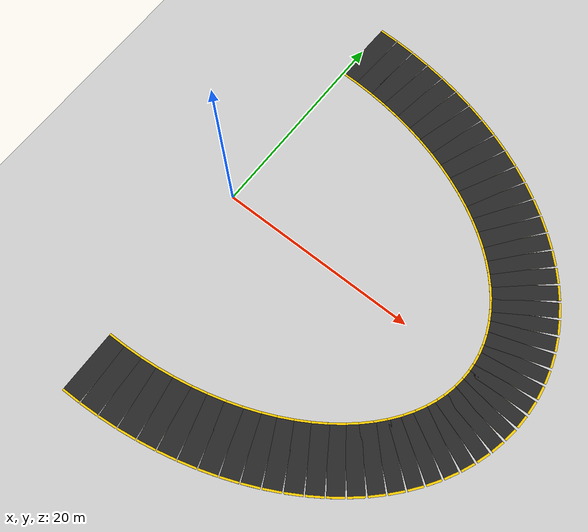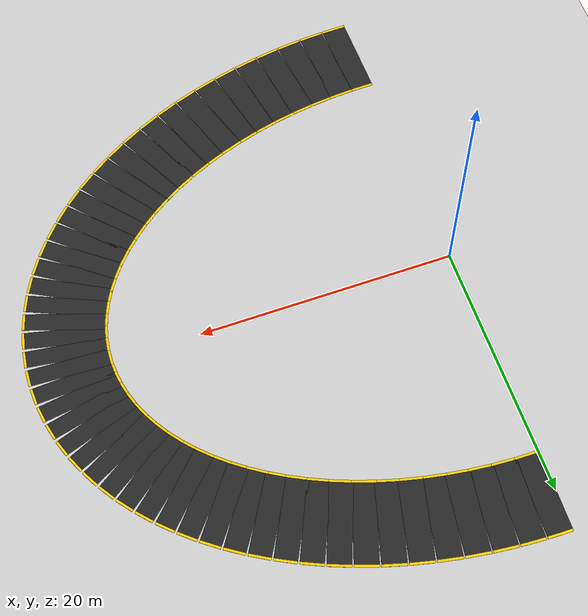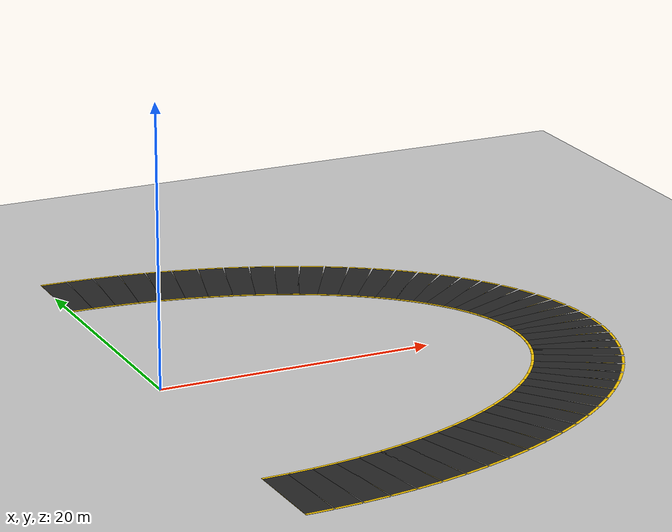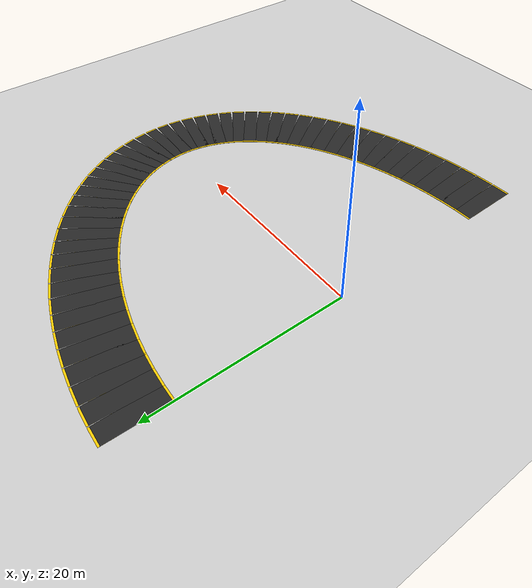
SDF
<sdf version="1.7">
 <world name="custom_road_world">
  <include><uri>https://fuel.ignitionrobotics.org/1.0/openrobotics/models/Ground Plane</uri></include>
  <include><uri>https://fuel.ignitionrobotics.org/1.0/openrobotics/models/Sun</uri></include>
  <model name="elliptical_road">
   <static>true</static>
   <link name="seg_0">
    <pose>29.970 0.628 0.01 0 0 1.618</pose>
    <visual name="yellow_base_0">
     <pose>0 0 0.001 0 0 0</pose>
     <geometry><box><size>1.287 6.4 0.02</size></box></geometry>
     <material>
      <ambient>1.0 0.8 0.0 1.0</ambient>
      <diffuse>1.0 0.8 0.0 1.0</diffuse>
      <specular>0.1 0.1 0.1 1.0</specular>
     </material>
    </visual>
    <visual name="asphalt_top_0">
     <pose>0 0 0.002 0 0 0</pose>
     <geometry><box><size>1.287 6.0 0.02</size></box></geometry>
     <material>
      <ambient>0.15 0.15 0.15 1.0</ambient>
      <diffuse>0.15 0.15 0.15 1.0</diffuse>
      <specular>0.05 0.05 0.05 1.0</specular>
     </material>
    </visual>
    <collision name="collision_0">
     <pose>0 0 0.002 0 0 0</pose>
     <geometry><box><size>1.287 6.0 0.02</size></box></geometry>
    </collision>
   </link>
   <link name="seg_1">
    <pose>29.852 1.881 0.01 0 0 1.712</pose>
    <visual name="yellow_base_1">
     <pose>0 0 0.001 0 0 0</pose>
     <geometry><box><size>1.293 6.4 0.02</size></box></geometry>
     <material>
      <ambient>1.0 0.8 0.0 1.0</ambient>
      <diffuse>1.0 0.8 0.0 1.0</diffuse>
      <specular>0.1 0.1 0.1 1.0</specular>
     </material>
    </visual>
    <visual name="asphalt_top_1">
     <pose>0 0 0.002 0 0 0</pose>
     <geometry><box><size>1.293 6.0 0.02</size></box></geometry>
     <material>
      <ambient>0.15 0.15 0.15 1.0</ambient>
      <diffuse>0.15 0.15 0.15 1.0</diffuse>
      <specular>0.05 0.05 0.05 1.0</specular>
     </material>
    </visual>
    <collision name="collision_1">
     <pose>0 0 0.002 0 0 0</pose>
     <geometry><box><size>1.293 6.0 0.02</size></box></geometry>
    </collision>
   </link>
   <link name="seg_2">
    <pose>29.616 3.127 0.01 0 0 1.804</pose>
    <visual name="yellow_base_2">
     <pose>0 0 0.001 0 0 0</pose>
     <geometry><box><size>1.306 6.4 0.02</size></box></geometry>
     <material>
      <ambient>1.0 0.8 0.0 1.0</ambient>
      <diffuse>1.0 0.8 0.0 1.0</diffuse>
      <specular>0.1 0.1 0.1 1.0</specular>
     </material>
    </visual>
    <visual name="asphalt_top_2">
     <pose>0 0 0.002 0 0 0</pose>
     <geometry><box><size>1.306 6.0 0.02</size></box></geometry>
     <material>
      <ambient>0.15 0.15 0.15 1.0</ambient>
      <diffuse>0.15 0.15 0.15 1.0</diffuse>
      <specular>0.05 0.05 0.05 1.0</specular>
     </material>
    </visual>
    <collision name="collision_2">
     <pose>0 0 0.002 0 0 0</pose>
     <geometry><box><size>1.306 6.0 0.02</size></box></geometry>
    </collision>
   </link>
   <link name="seg_3">
    <pose>29.263 4.361 0.01 0 0 1.894</pose>
    <visual name="yellow_base_3">
     <pose>0 0 0.001 0 0 0</pose>
     <geometry><box><size>1.323 6.4 0.02</size></box></geometry>
     <material>
      <ambient>1.0 0.8 0.0 1.0</ambient>
      <diffuse>1.0 0.8 0.0 1.0</diffuse>
      <specular>0.1 0.1 0.1 1.0</specular>
     </material>
    </visual>
    <visual name="asphalt_top_3">
     <pose>0 0 0.002 0 0 0</pose>
     <geometry><box><size>1.323 6.0 0.02</size></box></geometry>
     <material>
      <ambient>0.15 0.15 0.15 1.0</ambient>
      <diffuse>0.15 0.15 0.15 1.0</diffuse>
      <specular>0.05 0.05 0.05 1.0</specular>
     </material>
    </visual>
    <collision name="collision_3">
     <pose>0 0 0.002 0 0 0</pose>
     <geometry><box><size>1.323 6.0 0.02</size></box></geometry>
    </collision>
   </link>
   <link name="seg_4">
    <pose>28.795 5.577 0.01 0 0 1.982</pose>
    <visual name="yellow_base_4">
     <pose>0 0 0.001 0 0 0</pose>
     <geometry><box><size>1.346 6.4 0.02</size></box></geometry>
     <material>
      <ambient>1.0 0.8 0.0 1.0</ambient>
      <diffuse>1.0 0.8 0.0 1.0</diffuse>
      <specular>0.1 0.1 0.1 1.0</specular>
     </material>
    </visual>
    <visual name="asphalt_top_4">
     <pose>0 0 0.002 0 0 0</pose>
     <geometry><box><size>1.346 6.0 0.02</size></box></geometry>
     <material>
      <ambient>0.15 0.15 0.15 1.0</ambient>
      <diffuse>0.15 0.15 0.15 1.0</diffuse>
      <specular>0.05 0.05 0.05 1.0</specular>
     </material>
    </visual>
    <collision name="collision_4">
     <pose>0 0 0.002 0 0 0</pose>
     <geometry><box><size>1.346 6.0 0.02</size></box></geometry>
    </collision>
   </link>
   <link name="seg_5">
    <pose>28.212 6.771 0.01 0 0 2.066</pose>
    <visual name="yellow_base_5">
     <pose>0 0 0.001 0 0 0</pose>
     <geometry><box><size>1.374 6.4 0.02</size></box></geometry>
     <material>
      <ambient>1.0 0.8 0.0 1.0</ambient>
      <diffuse>1.0 0.8 0.0 1.0</diffuse>
      <specular>0.1 0.1 0.1 1.0</specular>
     </material>
    </visual>
    <visual name="asphalt_top_5">
     <pose>0 0 0.002 0 0 0</pose>
     <geometry><box><size>1.374 6.0 0.02</size></box></geometry>
     <material>
      <ambient>0.15 0.15 0.15 1.0</ambient>
      <diffuse>0.15 0.15 0.15 1.0</diffuse>
      <specular>0.05 0.05 0.05 1.0</specular>
     </material>
    </visual>
    <collision name="collision_5">
     <pose>0 0 0.002 0 0 0</pose>
     <geometry><box><size>1.374 6.0 0.02</size></box></geometry>
    </collision>
   </link>
   <link name="seg_6">
    <pose>27.519 7.939 0.01 0 0 2.147</pose>
    <visual name="yellow_base_6">
     <pose>0 0 0.001 0 0 0</pose>
     <geometry><box><size>1.405 6.4 0.02</size></box></geometry>
     <material>
      <ambient>1.0 0.8 0.0 1.0</ambient>
      <diffuse>1.0 0.8 0.0 1.0</diffuse>
      <specular>0.1 0.1 0.1 1.0</specular>
     </material>
    </visual>
    <visual name="asphalt_top_6">
     <pose>0 0 0.002 0 0 0</pose>
     <geometry><box><size>1.405 6.0 0.02</size></box></geometry>
     <material>
      <ambient>0.15 0.15 0.15 1.0</ambient>
      <diffuse>0.15 0.15 0.15 1.0</diffuse>
      <specular>0.05 0.05 0.05 1.0</specular>
     </material>
    </visual>
    <collision name="collision_6">
     <pose>0 0 0.002 0 0 0</pose>
     <geometry><box><size>1.405 6.0 0.02</size></box></geometry>
    </collision>
   </link>
   <link name="seg_7">
    <pose>26.717 9.075 0.01 0 0 2.223</pose>
    <visual name="yellow_base_7">
     <pose>0 0 0.001 0 0 0</pose>
     <geometry><box><size>1.439 6.4 0.02</size></box></geometry>
     <material>
      <ambient>1.0 0.8 0.0 1.0</ambient>
      <diffuse>1.0 0.8 0.0 1.0</diffuse>
      <specular>0.1 0.1 0.1 1.0</specular>
     </material>
    </visual>
    <visual name="asphalt_top_7">
     <pose>0 0 0.002 0 0 0</pose>
     <geometry><box><size>1.439 6.0 0.02</size></box></geometry>
     <material>
      <ambient>0.15 0.15 0.15 1.0</ambient>
      <diffuse>0.15 0.15 0.15 1.0</diffuse>
      <specular>0.05 0.05 0.05 1.0</specular>
     </material>
    </visual>
    <collision name="collision_7">
     <pose>0 0 0.002 0 0 0</pose>
     <geometry><box><size>1.439 6.0 0.02</size></box></geometry>
    </collision>
   </link>
   <link name="seg_8">
    <pose>25.810 10.176 0.01 0 0 2.296</pose>
    <visual name="yellow_base_8">
     <pose>0 0 0.001 0 0 0</pose>
     <geometry><box><size>1.476 6.4 0.02</size></box></geometry>
     <material>
      <ambient>1.0 0.8 0.0 1.0</ambient>
      <diffuse>1.0 0.8 0.0 1.0</diffuse>
      <specular>0.1 0.1 0.1 1.0</specular>
     </material>
    </visual>
    <visual name="asphalt_top_8">
     <pose>0 0 0.002 0 0 0</pose>
     <geometry><box><size>1.476 6.0 0.02</size></box></geometry>
     <material>
      <ambient>0.15 0.15 0.15 1.0</ambient>
      <diffuse>0.15 0.15 0.15 1.0</diffuse>
      <specular>0.05 0.05 0.05 1.0</specular>
     </material>
    </visual>
    <collision name="collision_8">
     <pose>0 0 0.002 0 0 0</pose>
     <geometry><box><size>1.476 6.0 0.02</size></box></geometry>
    </collision>
   </link>
   <link name="seg_9">
    <pose>24.800 11.236 0.01 0 0 2.366</pose>
    <visual name="yellow_base_9">
     <pose>0 0 0.001 0 0 0</pose>
     <geometry><box><size>1.514 6.4 0.02</size></box></geometry>
     <material>
      <ambient>1.0 0.8 0.0 1.0</ambient>
      <diffuse>1.0 0.8 0.0 1.0</diffuse>
      <specular>0.1 0.1 0.1 1.0</specular>
     </material>
    </visual>
    <visual name="asphalt_top_9">
     <pose>0 0 0.002 0 0 0</pose>
     <geometry><box><size>1.514 6.0 0.02</size></box></geometry>
     <material>
      <ambient>0.15 0.15 0.15 1.0</ambient>
      <diffuse>0.15 0.15 0.15 1.0</diffuse>
      <specular>0.05 0.05 0.05 1.0</specular>
     </material>
    </visual>
    <collision name="collision_9">
     <pose>0 0 0.002 0 0 0</pose>
     <geometry><box><size>1.514 6.0 0.02</size></box></geometry>
    </collision>
   </link>
   <link name="seg_10">
    <pose>23.693 12.252 0.01 0 0 2.432</pose>
    <visual name="yellow_base_10">
     <pose>0 0 0.001 0 0 0</pose>
     <geometry><box><size>1.553 6.4 0.02</size></box></geometry>
     <material>
      <ambient>1.0 0.8 0.0 1.0</ambient>
      <diffuse>1.0 0.8 0.0 1.0</diffuse>
      <specular>0.1 0.1 0.1 1.0</specular>
     </material>
    </visual>
    <visual name="asphalt_top_10">
     <pose>0 0 0.002 0 0 0</pose>
     <geometry><box><size>1.553 6.0 0.02</size></box></geometry>
     <material>
      <ambient>0.15 0.15 0.15 1.0</ambient>
      <diffuse>0.15 0.15 0.15 1.0</diffuse>
      <specular>0.05 0.05 0.05 1.0</specular>
     </material>
    </visual>
    <collision name="collision_10">
     <pose>0 0 0.002 0 0 0</pose>
     <geometry><box><size>1.553 6.0 0.02</size></box></geometry>
    </collision>
   </link>
   <link name="seg_11">
    <pose>22.492 13.220 0.01 0 0 2.494</pose>
    <visual name="yellow_base_11">
     <pose>0 0 0.001 0 0 0</pose>
     <geometry><box><size>1.593 6.4 0.02</size></box></geometry>
     <material>
      <ambient>1.0 0.8 0.0 1.0</ambient>
      <diffuse>1.0 0.8 0.0 1.0</diffuse>
      <specular>0.1 0.1 0.1 1.0</specular>
     </material>
    </visual>
    <visual name="asphalt_top_11">
     <pose>0 0 0.002 0 0 0</pose>
     <geometry><box><size>1.593 6.0 0.02</size></box></geometry>
     <material>
      <ambient>0.15 0.15 0.15 1.0</ambient>
      <diffuse>0.15 0.15 0.15 1.0</diffuse>
      <specular>0.05 0.05 0.05 1.0</specular>
     </material>
    </visual>
    <collision name="collision_11">
     <pose>0 0 0.002 0 0 0</pose>
     <geometry><box><size>1.593 6.0 0.02</size></box></geometry>
    </collision>
   </link>
   <link name="seg_12">
    <pose>21.203 14.135 0.01 0 0 2.554</pose>
    <visual name="yellow_base_12">
     <pose>0 0 0.001 0 0 0</pose>
     <geometry><box><size>1.632 6.4 0.02</size></box></geometry>
     <material>
      <ambient>1.0 0.8 0.0 1.0</ambient>
      <diffuse>1.0 0.8 0.0 1.0</diffuse>
      <specular>0.1 0.1 0.1 1.0</specular>
     </material>
    </visual>
    <visual name="asphalt_top_12">
     <pose>0 0 0.002 0 0 0</pose>
     <geometry><box><size>1.632 6.0 0.02</size></box></geometry>
     <material>
      <ambient>0.15 0.15 0.15 1.0</ambient>
      <diffuse>0.15 0.15 0.15 1.0</diffuse>
      <specular>0.05 0.05 0.05 1.0</specular>
     </material>
    </visual>
    <collision name="collision_12">
     <pose>0 0 0.002 0 0 0</pose>
     <geometry><box><size>1.632 6.0 0.02</size></box></geometry>
    </collision>
   </link>
   <link name="seg_13">
    <pose>19.830 14.995 0.01 0 0 2.610</pose>
    <visual name="yellow_base_13">
     <pose>0 0 0.001 0 0 0</pose>
     <geometry><box><size>1.670 6.4 0.02</size></box></geometry>
     <material>
      <ambient>1.0 0.8 0.0 1.0</ambient>
      <diffuse>1.0 0.8 0.0 1.0</diffuse>
      <specular>0.1 0.1 0.1 1.0</specular>
     </material>
    </visual>
    <visual name="asphalt_top_13">
     <pose>0 0 0.002 0 0 0</pose>
     <geometry><box><size>1.670 6.0 0.02</size></box></geometry>
     <material>
      <ambient>0.15 0.15 0.15 1.0</ambient>
      <diffuse>0.15 0.15 0.15 1.0</diffuse>
      <specular>0.05 0.05 0.05 1.0</specular>
     </material>
    </visual>
    <collision name="collision_13">
     <pose>0 0 0.002 0 0 0</pose>
     <geometry><box><size>1.670 6.0 0.02</size></box></geometry>
    </collision>
   </link>
   <link name="seg_14">
    <pose>18.378 15.795 0.01 0 0 2.664</pose>
    <visual name="yellow_base_14">
     <pose>0 0 0.001 0 0 0</pose>
     <geometry><box><size>1.706 6.4 0.02</size></box></geometry>
     <material>
      <ambient>1.0 0.8 0.0 1.0</ambient>
      <diffuse>1.0 0.8 0.0 1.0</diffuse>
      <specular>0.1 0.1 0.1 1.0</specular>
     </material>
    </visual>
    <visual name="asphalt_top_14">
     <pose>0 0 0.002 0 0 0</pose>
     <geometry><box><size>1.706 6.0 0.02</size></box></geometry>
     <material>
      <ambient>0.15 0.15 0.15 1.0</ambient>
      <diffuse>0.15 0.15 0.15 1.0</diffuse>
      <specular>0.05 0.05 0.05 1.0</specular>
     </material>
    </visual>
    <collision name="collision_14">
     <pose>0 0 0.002 0 0 0</pose>
     <geometry><box><size>1.706 6.0 0.02</size></box></geometry>
    </collision>
   </link>
   <link name="seg_15">
    <pose>16.854 16.533 0.01 0 0 2.716</pose>
    <visual name="yellow_base_15">
     <pose>0 0 0.001 0 0 0</pose>
     <geometry><box><size>1.741 6.4 0.02</size></box></geometry>
     <material>
      <ambient>1.0 0.8 0.0 1.0</ambient>
      <diffuse>1.0 0.8 0.0 1.0</diffuse>
      <specular>0.1 0.1 0.1 1.0</specular>
     </material>
    </visual>
    <visual name="asphalt_top_15">
     <pose>0 0 0.002 0 0 0</pose>
     <geometry><box><size>1.741 6.0 0.02</size></box></geometry>
     <material>
      <ambient>0.15 0.15 0.15 1.0</ambient>
      <diffuse>0.15 0.15 0.15 1.0</diffuse>
      <specular>0.05 0.05 0.05 1.0</specular>
     </material>
    </visual>
    <collision name="collision_15">
     <pose>0 0 0.002 0 0 0</pose>
     <geometry><box><size>1.741 6.0 0.02</size></box></geometry>
    </collision>
   </link>
   <link name="seg_16">
    <pose>15.264 17.206 0.01 0 0 2.766</pose>
    <visual name="yellow_base_16">
     <pose>0 0 0.001 0 0 0</pose>
     <geometry><box><size>1.774 6.4 0.02</size></box></geometry>
     <material>
      <ambient>1.0 0.8 0.0 1.0</ambient>
      <diffuse>1.0 0.8 0.0 1.0</diffuse>
      <specular>0.1 0.1 0.1 1.0</specular>
     </material>
    </visual>
    <visual name="asphalt_top_16">
     <pose>0 0 0.002 0 0 0</pose>
     <geometry><box><size>1.774 6.0 0.02</size></box></geometry>
     <material>
      <ambient>0.15 0.15 0.15 1.0</ambient>
      <diffuse>0.15 0.15 0.15 1.0</diffuse>
      <specular>0.05 0.05 0.05 1.0</specular>
     </material>
    </visual>
    <collision name="collision_16">
     <pose>0 0 0.002 0 0 0</pose>
     <geometry><box><size>1.774 6.0 0.02</size></box></geometry>
    </collision>
   </link>
   <link name="seg_17">
    <pose>13.613 17.811 0.01 0 0 2.814</pose>
    <visual name="yellow_base_17">
     <pose>0 0 0.001 0 0 0</pose>
     <geometry><box><size>1.803 6.4 0.02</size></box></geometry>
     <material>
      <ambient>1.0 0.8 0.0 1.0</ambient>
      <diffuse>1.0 0.8 0.0 1.0</diffuse>
      <specular>0.1 0.1 0.1 1.0</specular>
     </material>
    </visual>
    <visual name="asphalt_top_17">
     <pose>0 0 0.002 0 0 0</pose>
     <geometry><box><size>1.803 6.0 0.02</size></box></geometry>
     <material>
      <ambient>0.15 0.15 0.15 1.0</ambient>
      <diffuse>0.15 0.15 0.15 1.0</diffuse>
      <specular>0.05 0.05 0.05 1.0</specular>
     </material>
    </visual>
    <collision name="collision_17">
     <pose>0 0 0.002 0 0 0</pose>
     <geometry><box><size>1.803 6.0 0.02</size></box></geometry>
    </collision>
   </link>
   <link name="seg_18">
    <pose>11.909 18.346 0.01 0 0 2.861</pose>
    <visual name="yellow_base_18">
     <pose>0 0 0.001 0 0 0</pose>
     <geometry><box><size>1.830 6.4 0.02</size></box></geometry>
     <material>
      <ambient>1.0 0.8 0.0 1.0</ambient>
      <diffuse>1.0 0.8 0.0 1.0</diffuse>
      <specular>0.1 0.1 0.1 1.0</specular>
     </material>
    </visual>
    <visual name="asphalt_top_18">
     <pose>0 0 0.002 0 0 0</pose>
     <geometry><box><size>1.830 6.0 0.02</size></box></geometry>
     <material>
      <ambient>0.15 0.15 0.15 1.0</ambient>
      <diffuse>0.15 0.15 0.15 1.0</diffuse>
      <specular>0.05 0.05 0.05 1.0</specular>
     </material>
    </visual>
    <collision name="collision_18">
     <pose>0 0 0.002 0 0 0</pose>
     <geometry><box><size>1.830 6.0 0.02</size></box></geometry>
    </collision>
   </link>
   <link name="seg_19">
    <pose>10.157 18.808 0.01 0 0 2.906</pose>
    <visual name="yellow_base_19">
     <pose>0 0 0.001 0 0 0</pose>
     <geometry><box><size>1.854 6.4 0.02</size></box></geometry>
     <material>
      <ambient>1.0 0.8 0.0 1.0</ambient>
      <diffuse>1.0 0.8 0.0 1.0</diffuse>
      <specular>0.1 0.1 0.1 1.0</specular>
     </material>
    </visual>
    <visual name="asphalt_top_19">
     <pose>0 0 0.002 0 0 0</pose>
     <geometry><box><size>1.854 6.0 0.02</size></box></geometry>
     <material>
      <ambient>0.15 0.15 0.15 1.0</ambient>
      <diffuse>0.15 0.15 0.15 1.0</diffuse>
      <specular>0.05 0.05 0.05 1.0</specular>
     </material>
    </visual>
    <collision name="collision_19">
     <pose>0 0 0.002 0 0 0</pose>
     <geometry><box><size>1.854 6.0 0.02</size></box></geometry>
    </collision>
   </link>
   <link name="seg_20">
    <pose>8.366 19.196 0.01 0 0 2.950</pose>
    <visual name="yellow_base_20">
     <pose>0 0 0.001 0 0 0</pose>
     <geometry><box><size>1.873 6.4 0.02</size></box></geometry>
     <material>
      <ambient>1.0 0.8 0.0 1.0</ambient>
      <diffuse>1.0 0.8 0.0 1.0</diffuse>
      <specular>0.1 0.1 0.1 1.0</specular>
     </material>
    </visual>
    <visual name="asphalt_top_20">
     <pose>0 0 0.002 0 0 0</pose>
     <geometry><box><size>1.873 6.0 0.02</size></box></geometry>
     <material>
      <ambient>0.15 0.15 0.15 1.0</ambient>
      <diffuse>0.15 0.15 0.15 1.0</diffuse>
      <specular>0.05 0.05 0.05 1.0</specular>
     </material>
    </visual>
    <collision name="collision_20">
     <pose>0 0 0.002 0 0 0</pose>
     <geometry><box><size>1.873 6.0 0.02</size></box></geometry>
    </collision>
   </link>
   <link name="seg_21">
    <pose>6.541 19.509 0.01 0 0 2.994</pose>
    <visual name="yellow_base_21">
     <pose>0 0 0.001 0 0 0</pose>
     <geometry><box><size>1.890 6.4 0.02</size></box></geometry>
     <material>
      <ambient>1.0 0.8 0.0 1.0</ambient>
      <diffuse>1.0 0.8 0.0 1.0</diffuse>
      <specular>0.1 0.1 0.1 1.0</specular>
     </material>
    </visual>
    <visual name="asphalt_top_21">
     <pose>0 0 0.002 0 0 0</pose>
     <geometry><box><size>1.890 6.0 0.02</size></box></geometry>
     <material>
      <ambient>0.15 0.15 0.15 1.0</ambient>
      <diffuse>0.15 0.15 0.15 1.0</diffuse>
      <specular>0.05 0.05 0.05 1.0</specular>
     </material>
    </visual>
    <collision name="collision_21">
     <pose>0 0 0.002 0 0 0</pose>
     <geometry><box><size>1.890 6.0 0.02</size></box></geometry>
    </collision>
   </link>
   <link name="seg_22">
    <pose>4.691 19.744 0.01 0 0 3.036</pose>
    <visual name="yellow_base_22">
     <pose>0 0 0.001 0 0 0</pose>
     <geometry><box><size>1.902 6.4 0.02</size></box></geometry>
     <material>
      <ambient>1.0 0.8 0.0 1.0</ambient>
      <diffuse>1.0 0.8 0.0 1.0</diffuse>
      <specular>0.1 0.1 0.1 1.0</specular>
     </material>
    </visual>
    <visual name="asphalt_top_22">
     <pose>0 0 0.002 0 0 0</pose>
     <geometry><box><size>1.902 6.0 0.02</size></box></geometry>
     <material>
      <ambient>0.15 0.15 0.15 1.0</ambient>
      <diffuse>0.15 0.15 0.15 1.0</diffuse>
      <specular>0.05 0.05 0.05 1.0</specular>
     </material>
    </visual>
    <collision name="collision_22">
     <pose>0 0 0.002 0 0 0</pose>
     <geometry><box><size>1.902 6.0 0.02</size></box></geometry>
    </collision>
   </link>
   <link name="seg_23">
    <pose>2.822 19.901 0.01 0 0 3.079</pose>
    <visual name="yellow_base_23">
     <pose>0 0 0.001 0 0 0</pose>
     <geometry><box><size>1.910 6.4 0.02</size></box></geometry>
     <material>
      <ambient>1.0 0.8 0.0 1.0</ambient>
      <diffuse>1.0 0.8 0.0 1.0</diffuse>
      <specular>0.1 0.1 0.1 1.0</specular>
     </material>
    </visual>
    <visual name="asphalt_top_23">
     <pose>0 0 0.002 0 0 0</pose>
     <geometry><box><size>1.910 6.0 0.02</size></box></geometry>
     <material>
      <ambient>0.15 0.15 0.15 1.0</ambient>
      <diffuse>0.15 0.15 0.15 1.0</diffuse>
      <specular>0.05 0.05 0.05 1.0</specular>
     </material>
    </visual>
    <collision name="collision_23">
     <pose>0 0 0.002 0 0 0</pose>
     <geometry><box><size>1.910 6.0 0.02</size></box></geometry>
    </collision>
   </link>
   <link name="seg_24">
    <pose>0.942 19.980 0.01 0 0 3.121</pose>
    <visual name="yellow_base_24">
     <pose>0 0 0.001 0 0 0</pose>
     <geometry><box><size>1.914 6.4 0.02</size></box></geometry>
     <material>
      <ambient>1.0 0.8 0.0 1.0</ambient>
      <diffuse>1.0 0.8 0.0 1.0</diffuse>
      <specular>0.1 0.1 0.1 1.0</specular>
     </material>
    </visual>
    <visual name="asphalt_top_24">
     <pose>0 0 0.002 0 0 0</pose>
     <geometry><box><size>1.914 6.0 0.02</size></box></geometry>
     <material>
      <ambient>0.15 0.15 0.15 1.0</ambient>
      <diffuse>0.15 0.15 0.15 1.0</diffuse>
      <specular>0.05 0.05 0.05 1.0</specular>
     </material>
    </visual>
    <collision name="collision_24">
     <pose>0 0 0.002 0 0 0</pose>
     <geometry><box><size>1.914 6.0 0.02</size></box></geometry>
    </collision>
   </link>
   <link name="seg_75">
    <pose>0.942 -19.980 0.01 0 0 0.021</pose>
    <visual name="yellow_base_75">
     <pose>0 0 0.001 0 0 0</pose>
     <geometry><box><size>1.914 6.4 0.02</size></box></geometry>
     <material>
      <ambient>1.0 0.8 0.0 1.0</ambient>
      <diffuse>1.0 0.8 0.0 1.0</diffuse>
      <specular>0.1 0.1 0.1 1.0</specular>
     </material>
    </visual>
    <visual name="asphalt_top_75">
     <pose>0 0 0.002 0 0 0</pose>
     <geometry><box><size>1.914 6.0 0.02</size></box></geometry>
     <material>
      <ambient>0.15 0.15 0.15 1.0</ambient>
      <diffuse>0.15 0.15 0.15 1.0</diffuse>
      <specular>0.05 0.05 0.05 1.0</specular>
     </material>
    </visual>
    <collision name="collision_75">
     <pose>0 0 0.002 0 0 0</pose>
     <geometry><box><size>1.914 6.0 0.02</size></box></geometry>
    </collision>
   </link>
   <link name="seg_76">
    <pose>2.822 -19.901 0.01 0 0 0.063</pose>
    <visual name="yellow_base_76">
     <pose>0 0 0.001 0 0 0</pose>
     <geometry><box><size>1.910 6.4 0.02</size></box></geometry>
     <material>
      <ambient>1.0 0.8 0.0 1.0</ambient>
      <diffuse>1.0 0.8 0.0 1.0</diffuse>
      <specular>0.1 0.1 0.1 1.0</specular>
     </material>
    </visual>
    <visual name="asphalt_top_76">
     <pose>0 0 0.002 0 0 0</pose>
     <geometry><box><size>1.910 6.0 0.02</size></box></geometry>
     <material>
      <ambient>0.15 0.15 0.15 1.0</ambient>
      <diffuse>0.15 0.15 0.15 1.0</diffuse>
      <specular>0.05 0.05 0.05 1.0</specular>
     </material>
    </visual>
    <collision name="collision_76">
     <pose>0 0 0.002 0 0 0</pose>
     <geometry><box><size>1.910 6.0 0.02</size></box></geometry>
    </collision>
   </link>
   <link name="seg_77">
    <pose>4.691 -19.744 0.01 0 0 0.105</pose>
    <visual name="yellow_base_77">
     <pose>0 0 0.001 0 0 0</pose>
     <geometry><box><size>1.902 6.4 0.02</size></box></geometry>
     <material>
      <ambient>1.0 0.8 0.0 1.0</ambient>
      <diffuse>1.0 0.8 0.0 1.0</diffuse>
      <specular>0.1 0.1 0.1 1.0</specular>
     </material>
    </visual>
    <visual name="asphalt_top_77">
     <pose>0 0 0.002 0 0 0</pose>
     <geometry><box><size>1.902 6.0 0.02</size></box></geometry>
     <material>
      <ambient>0.15 0.15 0.15 1.0</ambient>
      <diffuse>0.15 0.15 0.15 1.0</diffuse>
      <specular>0.05 0.05 0.05 1.0</specular>
     </material>
    </visual>
    <collision name="collision_77">
     <pose>0 0 0.002 0 0 0</pose>
     <geometry><box><size>1.902 6.0 0.02</size></box></geometry>
    </collision>
   </link>
   <link name="seg_78">
    <pose>6.541 -19.509 0.01 0 0 0.148</pose>
    <visual name="yellow_base_78">
     <pose>0 0 0.001 0 0 0</pose>
     <geometry><box><size>1.890 6.4 0.02</size></box></geometry>
     <material>
      <ambient>1.0 0.8 0.0 1.0</ambient>
      <diffuse>1.0 0.8 0.0 1.0</diffuse>
      <specular>0.1 0.1 0.1 1.0</specular>
     </material>
    </visual>
    <visual name="asphalt_top_78">
     <pose>0 0 0.002 0 0 0</pose>
     <geometry><box><size>1.890 6.0 0.02</size></box></geometry>
     <material>
      <ambient>0.15 0.15 0.15 1.0</ambient>
      <diffuse>0.15 0.15 0.15 1.0</diffuse>
      <specular>0.05 0.05 0.05 1.0</specular>
     </material>
    </visual>
    <collision name="collision_78">
     <pose>0 0 0.002 0 0 0</pose>
     <geometry><box><size>1.890 6.0 0.02</size></box></geometry>
    </collision>
   </link>
   <link name="seg_79">
    <pose>8.366 -19.196 0.01 0 0 0.191</pose>
    <visual name="yellow_base_79">
     <pose>0 0 0.001 0 0 0</pose>
     <geometry><box><size>1.873 6.4 0.02</size></box></geometry>
     <material>
      <ambient>1.0 0.8 0.0 1.0</ambient>
      <diffuse>1.0 0.8 0.0 1.0</diffuse>
      <specular>0.1 0.1 0.1 1.0</specular>
     </material>
    </visual>
    <visual name="asphalt_top_79">
     <pose>0 0 0.002 0 0 0</pose>
     <geometry><box><size>1.873 6.0 0.02</size></box></geometry>
     <material>
      <ambient>0.15 0.15 0.15 1.0</ambient>
      <diffuse>0.15 0.15 0.15 1.0</diffuse>
      <specular>0.05 0.05 0.05 1.0</specular>
     </material>
    </visual>
    <collision name="collision_79">
     <pose>0 0 0.002 0 0 0</pose>
     <geometry><box><size>1.873 6.0 0.02</size></box></geometry>
    </collision>
   </link>
   <link name="seg_80">
    <pose>10.157 -18.808 0.01 0 0 0.236</pose>
    <visual name="yellow_base_80">
     <pose>0 0 0.001 0 0 0</pose>
     <geometry><box><size>1.854 6.4 0.02</size></box></geometry>
     <material>
      <ambient>1.0 0.8 0.0 1.0</ambient>
      <diffuse>1.0 0.8 0.0 1.0</diffuse>
      <specular>0.1 0.1 0.1 1.0</specular>
     </material>
    </visual>
    <visual name="asphalt_top_80">
     <pose>0 0 0.002 0 0 0</pose>
     <geometry><box><size>1.854 6.0 0.02</size></box></geometry>
     <material>
      <ambient>0.15 0.15 0.15 1.0</ambient>
      <diffuse>0.15 0.15 0.15 1.0</diffuse>
      <specular>0.05 0.05 0.05 1.0</specular>
     </material>
    </visual>
    <collision name="collision_80">
     <pose>0 0 0.002 0 0 0</pose>
     <geometry><box><size>1.854 6.0 0.02</size></box></geometry>
    </collision>
   </link>
   <link name="seg_81">
    <pose>11.909 -18.346 0.01 0 0 0.281</pose>
    <visual name="yellow_base_81">
     <pose>0 0 0.001 0 0 0</pose>
     <geometry><box><size>1.830 6.4 0.02</size></box></geometry>
     <material>
      <ambient>1.0 0.8 0.0 1.0</ambient>
      <diffuse>1.0 0.8 0.0 1.0</diffuse>
      <specular>0.1 0.1 0.1 1.0</specular>
     </material>
    </visual>
    <visual name="asphalt_top_81">
     <pose>0 0 0.002 0 0 0</pose>
     <geometry><box><size>1.830 6.0 0.02</size></box></geometry>
     <material>
      <ambient>0.15 0.15 0.15 1.0</ambient>
      <diffuse>0.15 0.15 0.15 1.0</diffuse>
      <specular>0.05 0.05 0.05 1.0</specular>
     </material>
    </visual>
    <collision name="collision_81">
     <pose>0 0 0.002 0 0 0</pose>
     <geometry><box><size>1.830 6.0 0.02</size></box></geometry>
    </collision>
   </link>
   <link name="seg_82">
    <pose>13.613 -17.811 0.01 0 0 0.327</pose>
    <visual name="yellow_base_82">
     <pose>0 0 0.001 0 0 0</pose>
     <geometry><box><size>1.803 6.4 0.02</size></box></geometry>
     <material>
      <ambient>1.0 0.8 0.0 1.0</ambient>
      <diffuse>1.0 0.8 0.0 1.0</diffuse>
      <specular>0.1 0.1 0.1 1.0</specular>
     </material>
    </visual>
    <visual name="asphalt_top_82">
     <pose>0 0 0.002 0 0 0</pose>
     <geometry><box><size>1.803 6.0 0.02</size></box></geometry>
     <material>
      <ambient>0.15 0.15 0.15 1.0</ambient>
      <diffuse>0.15 0.15 0.15 1.0</diffuse>
      <specular>0.05 0.05 0.05 1.0</specular>
     </material>
    </visual>
    <collision name="collision_82">
     <pose>0 0 0.002 0 0 0</pose>
     <geometry><box><size>1.803 6.0 0.02</size></box></geometry>
    </collision>
   </link>
   <link name="seg_83">
    <pose>15.264 -17.206 0.01 0 0 0.376</pose>
    <visual name="yellow_base_83">
     <pose>0 0 0.001 0 0 0</pose>
     <geometry><box><size>1.774 6.4 0.02</size></box></geometry>
     <material>
      <ambient>1.0 0.8 0.0 1.0</ambient>
      <diffuse>1.0 0.8 0.0 1.0</diffuse>
      <specular>0.1 0.1 0.1 1.0</specular>
     </material>
    </visual>
    <visual name="asphalt_top_83">
     <pose>0 0 0.002 0 0 0</pose>
     <geometry><box><size>1.774 6.0 0.02</size></box></geometry>
     <material>
      <ambient>0.15 0.15 0.15 1.0</ambient>
      <diffuse>0.15 0.15 0.15 1.0</diffuse>
      <specular>0.05 0.05 0.05 1.0</specular>
     </material>
    </visual>
    <collision name="collision_83">
     <pose>0 0 0.002 0 0 0</pose>
     <geometry><box><size>1.774 6.0 0.02</size></box></geometry>
    </collision>
   </link>
   <link name="seg_84">
    <pose>16.854 -16.533 0.01 0 0 0.425</pose>
    <visual name="yellow_base_84">
     <pose>0 0 0.001 0 0 0</pose>
     <geometry><box><size>1.741 6.4 0.02</size></box></geometry>
     <material>
      <ambient>1.0 0.8 0.0 1.0</ambient>
      <diffuse>1.0 0.8 0.0 1.0</diffuse>
      <specular>0.1 0.1 0.1 1.0</specular>
     </material>
    </visual>
    <visual name="asphalt_top_84">
     <pose>0 0 0.002 0 0 0</pose>
     <geometry><box><size>1.741 6.0 0.02</size></box></geometry>
     <material>
      <ambient>0.15 0.15 0.15 1.0</ambient>
      <diffuse>0.15 0.15 0.15 1.0</diffuse>
      <specular>0.05 0.05 0.05 1.0</specular>
     </material>
    </visual>
    <collision name="collision_84">
     <pose>0 0 0.002 0 0 0</pose>
     <geometry><box><size>1.741 6.0 0.02</size></box></geometry>
    </collision>
   </link>
   <link name="seg_85">
    <pose>18.378 -15.795 0.01 0 0 0.477</pose>
    <visual name="yellow_base_85">
     <pose>0 0 0.001 0 0 0</pose>
     <geometry><box><size>1.706 6.4 0.02</size></box></geometry>
     <material>
      <ambient>1.0 0.8 0.0 1.0</ambient>
      <diffuse>1.0 0.8 0.0 1.0</diffuse>
      <specular>0.1 0.1 0.1 1.0</specular>
     </material>
    </visual>
    <visual name="asphalt_top_85">
     <pose>0 0 0.002 0 0 0</pose>
     <geometry><box><size>1.706 6.0 0.02</size></box></geometry>
     <material>
      <ambient>0.15 0.15 0.15 1.0</ambient>
      <diffuse>0.15 0.15 0.15 1.0</diffuse>
      <specular>0.05 0.05 0.05 1.0</specular>
     </material>
    </visual>
    <collision name="collision_85">
     <pose>0 0 0.002 0 0 0</pose>
     <geometry><box><size>1.706 6.0 0.02</size></box></geometry>
    </collision>
   </link>
   <link name="seg_86">
    <pose>19.830 -14.995 0.01 0 0 0.531</pose>
    <visual name="yellow_base_86">
     <pose>0 0 0.001 0 0 0</pose>
     <geometry><box><size>1.670 6.4 0.02</size></box></geometry>
     <material>
      <ambient>1.0 0.8 0.0 1.0</ambient>
      <diffuse>1.0 0.8 0.0 1.0</diffuse>
      <specular>0.1 0.1 0.1 1.0</specular>
     </material>
    </visual>
    <visual name="asphalt_top_86">
     <pose>0 0 0.002 0 0 0</pose>
     <geometry><box><size>1.670 6.0 0.02</size></box></geometry>
     <material>
      <ambient>0.15 0.15 0.15 1.0</ambient>
      <diffuse>0.15 0.15 0.15 1.0</diffuse>
      <specular>0.05 0.05 0.05 1.0</specular>
     </material>
    </visual>
    <collision name="collision_86">
     <pose>0 0 0.002 0 0 0</pose>
     <geometry><box><size>1.670 6.0 0.02</size></box></geometry>
    </collision>
   </link>
   <link name="seg_87">
    <pose>21.203 -14.135 0.01 0 0 0.588</pose>
    <visual name="yellow_base_87">
     <pose>0 0 0.001 0 0 0</pose>
     <geometry><box><size>1.632 6.4 0.02</size></box></geometry>
     <material>
      <ambient>1.0 0.8 0.0 1.0</ambient>
      <diffuse>1.0 0.8 0.0 1.0</diffuse>
      <specular>0.1 0.1 0.1 1.0</specular>
     </material>
    </visual>
    <visual name="asphalt_top_87">
     <pose>0 0 0.002 0 0 0</pose>
     <geometry><box><size>1.632 6.0 0.02</size></box></geometry>
     <material>
      <ambient>0.15 0.15 0.15 1.0</ambient>
      <diffuse>0.15 0.15 0.15 1.0</diffuse>
      <specular>0.05 0.05 0.05 1.0</specular>
     </material>
    </visual>
    <collision name="collision_87">
     <pose>0 0 0.002 0 0 0</pose>
     <geometry><box><size>1.632 6.0 0.02</size></box></geometry>
    </collision>
   </link>
   <link name="seg_88">
    <pose>22.492 -13.220 0.01 0 0 0.647</pose>
    <visual name="yellow_base_88">
     <pose>0 0 0.001 0 0 0</pose>
     <geometry><box><size>1.593 6.4 0.02</size></box></geometry>
     <material>
      <ambient>1.0 0.8 0.0 1.0</ambient>
      <diffuse>1.0 0.8 0.0 1.0</diffuse>
      <specular>0.1 0.1 0.1 1.0</specular>
     </material>
    </visual>
    <visual name="asphalt_top_88">
     <pose>0 0 0.002 0 0 0</pose>
     <geometry><box><size>1.593 6.0 0.02</size></box></geometry>
     <material>
      <ambient>0.15 0.15 0.15 1.0</ambient>
      <diffuse>0.15 0.15 0.15 1.0</diffuse>
      <specular>0.05 0.05 0.05 1.0</specular>
     </material>
    </visual>
    <collision name="collision_88">
     <pose>0 0 0.002 0 0 0</pose>
     <geometry><box><size>1.593 6.0 0.02</size></box></geometry>
    </collision>
   </link>
   <link name="seg_89">
    <pose>23.693 -12.252 0.01 0 0 0.710</pose>
    <visual name="yellow_base_89">
     <pose>0 0 0.001 0 0 0</pose>
     <geometry><box><size>1.553 6.4 0.02</size></box></geometry>
     <material>
      <ambient>1.0 0.8 0.0 1.0</ambient>
      <diffuse>1.0 0.8 0.0 1.0</diffuse>
      <specular>0.1 0.1 0.1 1.0</specular>
     </material>
    </visual>
    <visual name="asphalt_top_89">
     <pose>0 0 0.002 0 0 0</pose>
     <geometry><box><size>1.553 6.0 0.02</size></box></geometry>
     <material>
      <ambient>0.15 0.15 0.15 1.0</ambient>
      <diffuse>0.15 0.15 0.15 1.0</diffuse>
      <specular>0.05 0.05 0.05 1.0</specular>
     </material>
    </visual>
    <collision name="collision_89">
     <pose>0 0 0.002 0 0 0</pose>
     <geometry><box><size>1.553 6.0 0.02</size></box></geometry>
    </collision>
   </link>
   <link name="seg_90">
    <pose>24.800 -11.236 0.01 0 0 0.776</pose>
    <visual name="yellow_base_90">
     <pose>0 0 0.001 0 0 0</pose>
     <geometry><box><size>1.514 6.4 0.02</size></box></geometry>
     <material>
      <ambient>1.0 0.8 0.0 1.0</ambient>
      <diffuse>1.0 0.8 0.0 1.0</diffuse>
      <specular>0.1 0.1 0.1 1.0</specular>
     </material>
    </visual>
    <visual name="asphalt_top_90">
     <pose>0 0 0.002 0 0 0</pose>
     <geometry><box><size>1.514 6.0 0.02</size></box></geometry>
     <material>
      <ambient>0.15 0.15 0.15 1.0</ambient>
      <diffuse>0.15 0.15 0.15 1.0</diffuse>
      <specular>0.05 0.05 0.05 1.0</specular>
     </material>
    </visual>
    <collision name="collision_90">
     <pose>0 0 0.002 0 0 0</pose>
     <geometry><box><size>1.514 6.0 0.02</size></box></geometry>
    </collision>
   </link>
   <link name="seg_91">
    <pose>25.810 -10.176 0.01 0 0 0.845</pose>
    <visual name="yellow_base_91">
     <pose>0 0 0.001 0 0 0</pose>
     <geometry><box><size>1.476 6.4 0.02</size></box></geometry>
     <material>
      <ambient>1.0 0.8 0.0 1.0</ambient>
      <diffuse>1.0 0.8 0.0 1.0</diffuse>
      <specular>0.1 0.1 0.1 1.0</specular>
     </material>
    </visual>
    <visual name="asphalt_top_91">
     <pose>0 0 0.002 0 0 0</pose>
     <geometry><box><size>1.476 6.0 0.02</size></box></geometry>
     <material>
      <ambient>0.15 0.15 0.15 1.0</ambient>
      <diffuse>0.15 0.15 0.15 1.0</diffuse>
      <specular>0.05 0.05 0.05 1.0</specular>
     </material>
    </visual>
    <collision name="collision_91">
     <pose>0 0 0.002 0 0 0</pose>
     <geometry><box><size>1.476 6.0 0.02</size></box></geometry>
    </collision>
   </link>
   <link name="seg_92">
    <pose>26.717 -9.075 0.01 0 0 0.918</pose>
    <visual name="yellow_base_92">
     <pose>0 0 0.001 0 0 0</pose>
     <geometry><box><size>1.439 6.4 0.02</size></box></geometry>
     <material>
      <ambient>1.0 0.8 0.0 1.0</ambient>
      <diffuse>1.0 0.8 0.0 1.0</diffuse>
      <specular>0.1 0.1 0.1 1.0</specular>
     </material>
    </visual>
    <visual name="asphalt_top_92">
     <pose>0 0 0.002 0 0 0</pose>
     <geometry><box><size>1.439 6.0 0.02</size></box></geometry>
     <material>
      <ambient>0.15 0.15 0.15 1.0</ambient>
      <diffuse>0.15 0.15 0.15 1.0</diffuse>
      <specular>0.05 0.05 0.05 1.0</specular>
     </material>
    </visual>
    <collision name="collision_92">
     <pose>0 0 0.002 0 0 0</pose>
     <geometry><box><size>1.439 6.0 0.02</size></box></geometry>
    </collision>
   </link>
   <link name="seg_93">
    <pose>27.519 -7.939 0.01 0 0 0.995</pose>
    <visual name="yellow_base_93">
     <pose>0 0 0.001 0 0 0</pose>
     <geometry><box><size>1.405 6.4 0.02</size></box></geometry>
     <material>
      <ambient>1.0 0.8 0.0 1.0</ambient>
      <diffuse>1.0 0.8 0.0 1.0</diffuse>
      <specular>0.1 0.1 0.1 1.0</specular>
     </material>
    </visual>
    <visual name="asphalt_top_93">
     <pose>0 0 0.002 0 0 0</pose>
     <geometry><box><size>1.405 6.0 0.02</size></box></geometry>
     <material>
      <ambient>0.15 0.15 0.15 1.0</ambient>
      <diffuse>0.15 0.15 0.15 1.0</diffuse>
      <specular>0.05 0.05 0.05 1.0</specular>
     </material>
    </visual>
    <collision name="collision_93">
     <pose>0 0 0.002 0 0 0</pose>
     <geometry><box><size>1.405 6.0 0.02</size></box></geometry>
    </collision>
   </link>
   <link name="seg_94">
    <pose>28.212 -6.771 0.01 0 0 1.076</pose>
    <visual name="yellow_base_94">
     <pose>0 0 0.001 0 0 0</pose>
     <geometry><box><size>1.374 6.4 0.02</size></box></geometry>
     <material>
      <ambient>1.0 0.8 0.0 1.0</ambient>
      <diffuse>1.0 0.8 0.0 1.0</diffuse>
      <specular>0.1 0.1 0.1 1.0</specular>
     </material>
    </visual>
    <visual name="asphalt_top_94">
     <pose>0 0 0.002 0 0 0</pose>
     <geometry><box><size>1.374 6.0 0.02</size></box></geometry>
     <material>
      <ambient>0.15 0.15 0.15 1.0</ambient>
      <diffuse>0.15 0.15 0.15 1.0</diffuse>
      <specular>0.05 0.05 0.05 1.0</specular>
     </material>
    </visual>
    <collision name="collision_94">
     <pose>0 0 0.002 0 0 0</pose>
     <geometry><box><size>1.374 6.0 0.02</size></box></geometry>
    </collision>
   </link>
   <link name="seg_95">
    <pose>28.795 -5.577 0.01 0 0 1.160</pose>
    <visual name="yellow_base_95">
     <pose>0 0 0.001 0 0 0</pose>
     <geometry><box><size>1.346 6.4 0.02</size></box></geometry>
     <material>
      <ambient>1.0 0.8 0.0 1.0</ambient>
      <diffuse>1.0 0.8 0.0 1.0</diffuse>
      <specular>0.1 0.1 0.1 1.0</specular>
     </material>
    </visual>
    <visual name="asphalt_top_95">
     <pose>0 0 0.002 0 0 0</pose>
     <geometry><box><size>1.346 6.0 0.02</size></box></geometry>
     <material>
      <ambient>0.15 0.15 0.15 1.0</ambient>
      <diffuse>0.15 0.15 0.15 1.0</diffuse>
      <specular>0.05 0.05 0.05 1.0</specular>
     </material>
    </visual>
    <collision name="collision_95">
     <pose>0 0 0.002 0 0 0</pose>
     <geometry><box><size>1.346 6.0 0.02</size></box></geometry>
    </collision>
   </link>
   <link name="seg_96">
    <pose>29.263 -4.361 0.01 0 0 1.247</pose>
    <visual name="yellow_base_96">
     <pose>0 0 0.001 0 0 0</pose>
     <geometry><box><size>1.323 6.4 0.02</size></box></geometry>
     <material>
      <ambient>1.0 0.8 0.0 1.0</ambient>
      <diffuse>1.0 0.8 0.0 1.0</diffuse>
      <specular>0.1 0.1 0.1 1.0</specular>
     </material>
    </visual>
    <visual name="asphalt_top_96">
     <pose>0 0 0.002 0 0 0</pose>
     <geometry><box><size>1.323 6.0 0.02</size></box></geometry>
     <material>
      <ambient>0.15 0.15 0.15 1.0</ambient>
      <diffuse>0.15 0.15 0.15 1.0</diffuse>
      <specular>0.05 0.05 0.05 1.0</specular>
     </material>
    </visual>
    <collision name="collision_96">
     <pose>0 0 0.002 0 0 0</pose>
     <geometry><box><size>1.323 6.0 0.02</size></box></geometry>
    </collision>
   </link>
   <link name="seg_97">
    <pose>29.616 -3.127 0.01 0 0 1.338</pose>
    <visual name="yellow_base_97">
     <pose>0 0 0.001 0 0 0</pose>
     <geometry><box><size>1.306 6.4 0.02</size></box></geometry>
     <material>
      <ambient>1.0 0.8 0.0 1.0</ambient>
      <diffuse>1.0 0.8 0.0 1.0</diffuse>
      <specular>0.1 0.1 0.1 1.0</specular>
     </material>
    </visual>
    <visual name="asphalt_top_97">
     <pose>0 0 0.002 0 0 0</pose>
     <geometry><box><size>1.306 6.0 0.02</size></box></geometry>
     <material>
      <ambient>0.15 0.15 0.15 1.0</ambient>
      <diffuse>0.15 0.15 0.15 1.0</diffuse>
      <specular>0.05 0.05 0.05 1.0</specular>
     </material>
    </visual>
    <collision name="collision_97">
     <pose>0 0 0.002 0 0 0</pose>
     <geometry><box><size>1.306 6.0 0.02</size></box></geometry>
    </collision>
   </link>
   <link name="seg_98">
    <pose>29.852 -1.881 0.01 0 0 1.430</pose>
    <visual name="yellow_base_98">
     <pose>0 0 0.001 0 0 0</pose>
     <geometry><box><size>1.293 6.4 0.02</size></box></geometry>
     <material>
      <ambient>1.0 0.8 0.0 1.0</ambient>
      <diffuse>1.0 0.8 0.0 1.0</diffuse>
      <specular>0.1 0.1 0.1 1.0</specular>
     </material>
    </visual>
    <visual name="asphalt_top_98">
     <pose>0 0 0.002 0 0 0</pose>
     <geometry><box><size>1.293 6.0 0.02</size></box></geometry>
     <material>
      <ambient>0.15 0.15 0.15 1.0</ambient>
      <diffuse>0.15 0.15 0.15 1.0</diffuse>
      <specular>0.05 0.05 0.05 1.0</specular>
     </material>
    </visual>
    <collision name="collision_98">
     <pose>0 0 0.002 0 0 0</pose>
     <geometry><box><size>1.293 6.0 0.02</size></box></geometry>
    </collision>
   </link>
   <link name="seg_99">
    <pose>29.970 -0.628 0.01 0 0 1.524</pose>
    <visual name="yellow_base_99">
     <pose>0 0 0.001 0 0 0</pose>
     <geometry><box><size>1.287 6.4 0.02</size></box></geometry>
     <material>
      <ambient>1.0 0.8 0.0 1.0</ambient>
      <diffuse>1.0 0.8 0.0 1.0</diffuse>
      <specular>0.1 0.1 0.1 1.0</specular>
     </material>
    </visual>
    <visual name="asphalt_top_99">
     <pose>0 0 0.002 0 0 0</pose>
     <geometry><box><size>1.287 6.0 0.02</size></box></geometry>
     <material>
      <ambient>0.15 0.15 0.15 1.0</ambient>
      <diffuse>0.15 0.15 0.15 1.0</diffuse>
      <specular>0.05 0.05 0.05 1.0</specular>
     </material>
    </visual>
    <collision name="collision_99">
     <pose>0 0 0.002 0 0 0</pose>
     <geometry><box><size>1.287 6.0 0.02</size></box></geometry>
    </collision>
   </link>
  </model>
 </world>
</sdf>
